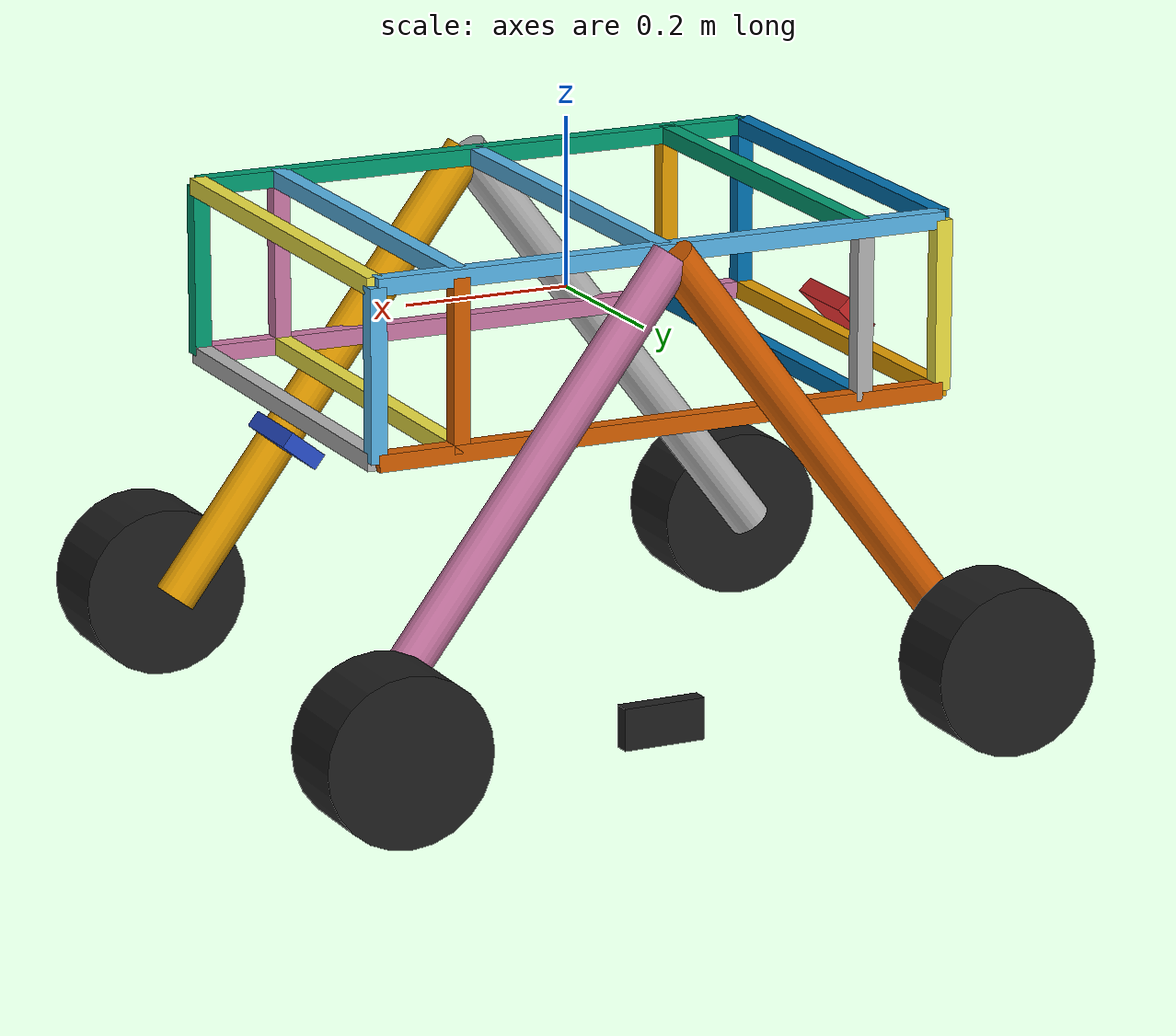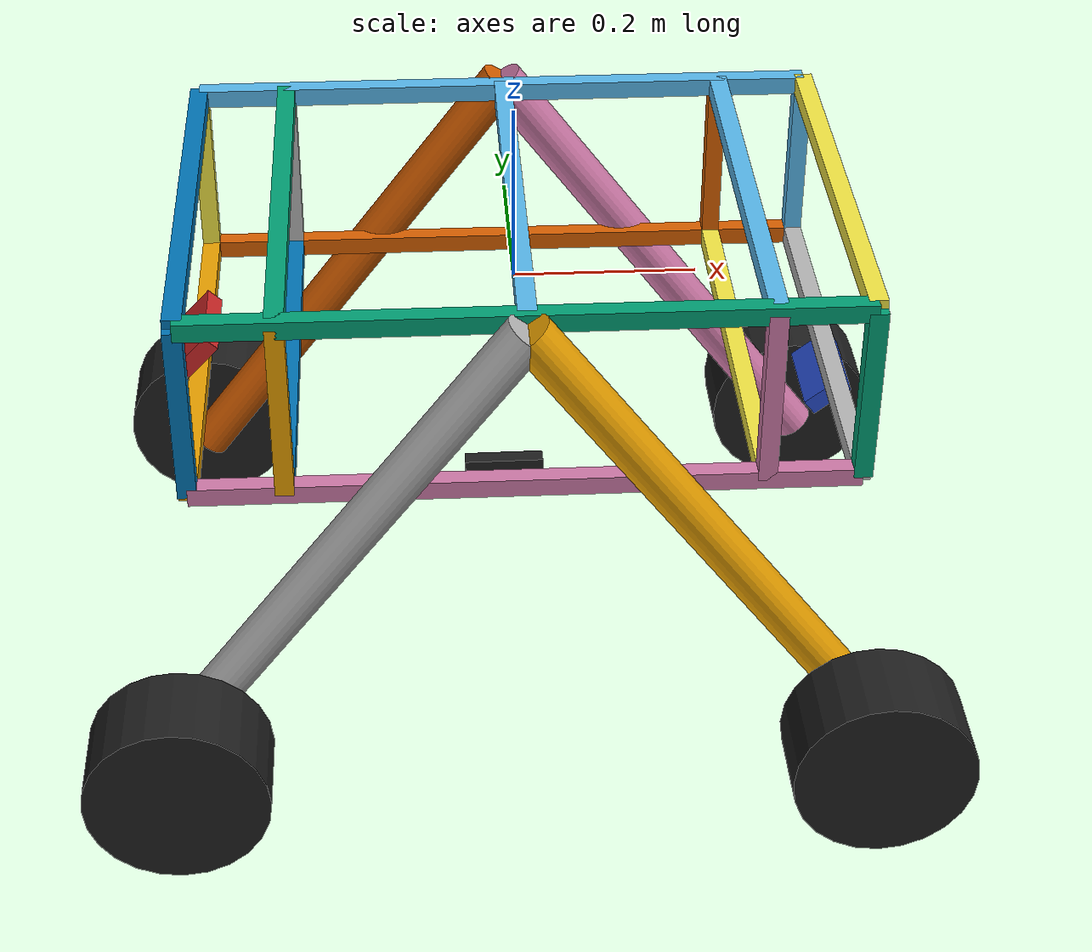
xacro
<?xml version="1.0"?>
<robot name="percy" xmlns:xacro="http://wwww.ros.org/wiki/xacro">
<xacro:include filename="$(find percy_model)/urdf/materials.xacro" />
<xacro:include filename="$(find percy_model)/urdf/percy_model_macros.xacro" />
<xacro:include filename="$(find percy_model)/urdf/percy_model.gazebo.xacro" />
<xacro:property name= "link_width" value= "0.02"/>
<xacro:property name="body_length" value="0.7"/>
<xacro:property name="body_width" value="0.5"/>
<xacro:property name="body_height" value="0.2"/>
<xacro:property name="work_height" value="0.3"/>
<xacro:property name="inner_strut_width" value="0.5"/>
<xacro:property name="leg_radius" value = "0.025"/>
<xacro:property name="theta" value="37"/>
<xacro:property name="leg_length" value="${(work_height+body_height)/(cos(radians(theta)))}"/>
<xacro:macro name="front_left_wheel_origin">
<origin xyz=" ${-1*((leg_length)*sin(radians(theta)))} ${body_width/2 + leg_radius} ${(body_height/2)-(leg_length*cos(radians(theta)))}" rpy="${radians(90)} 0.0 0.0"/>
</xacro:macro>
<xacro:property name="wheel_radius" value="0.1"/>
<xacro:property name="wheel_thickness" value="0.1"/>
<xacro:property name="wheel_mass" value="1"/>
<xacro:property name="camera_link_length" value="0.1"/>
<xacro:property name="camera_link_width" value="0.02"/>
<xacro:property name="camera_link_height" value="0.05"/>
<xacro:property name="wheel_dist" value="${body_width+leg_radius*4}"/>
<xacro:property name="density" value="2710"/>

<link name="origin">
    <origin xyz="0.0 0.0 0.0"/>
</link>

 <link name="link1">
  <pose> 0 0 3 0 0 0 </pose>
    <collision>
          <origin rpy="0.0 0.0 0.0" xyz="0 0 0"/>

        <geometry>
        <box size=" ${body_length} ${link_width} ${link_width}"/>
        </geometry>
    </collision>
    <visual >
             <origin rpy="0.0 0.0 0.0" xyz="0 0 0"/>
        <geometry>
            <box size="${body_length} ${link_width} ${link_width}"/>
        <material name="orange"/>
        </geometry>

    </visual>
    <inertial>
     <origin rpy="0.0 0.0 0.0" xyz="0 0 0"/>
     <xacro:link_inertia length="${body_length}" width="${link_width}" height="${link_width}"/>
    </inertial>
</link>

<joint name="joint1" type="fixed">
    <parent link="origin"/>
    <child link="link1"/>
     <origin rpy="0.0 0.0 0.0" xyz="0 ${body_width/2} ${body_height/2}"/>

</joint>

<link name="link2">

    <collision>
        <origin rpy="0.0 0.0 0" xyz="0 0 0"/>

        <geometry>
        <box size="${body_length} ${link_width} ${link_width}"/>
        </geometry>
        </collision>
    <visual >
        <origin rpy="0.0 0.0 0" xyz="0 0 0"/>

        <geometry>
            <box size=" ${body_length} ${link_width} ${link_width}"/>
        </geometry>
    </visual>

        <inertial>
     <origin rpy="0.0 0.0 0.0" xyz="0 0 0"/>
     <xacro:link_inertia length="${body_length}" width="${link_width}" height="${link_width}"/>
    </inertial>
</link>

<joint name="joint2" type="fixed">
    <parent link="origin"/>
    <child link="link2"/>
     <origin rpy="0.0 0.0 0.0" xyz="0 ${-body_width/2} ${body_height/2}"/>

</joint>

<link name="link3">

     <collision>
        <origin rpy="0.0 0.0 0" xyz="0 0 0"/>

        <geometry>
        <box size="${link_width} ${body_width} ${link_width}"/>
        </geometry>
        </collision>
    <visual >
        <origin rpy="0.0 0.0 0" xyz="0 0 0"/>

        <geometry>
            <box size="${link_width} ${body_width} ${link_width}"/>
        </geometry>

    </visual>

    <inertial>
     <origin rpy="0.0 0.0 0.0" xyz="0 0 0"/>
     <xacro:link_inertia length="${link_width}" width="${body_width}" height="${link_width}"/>
    </inertial>
    </link>
<joint name="joint3" type="fixed">
    <parent link="origin"/>
    <child link="link3"/>
            <origin rpy="0.0 0.0 0" xyz="${body_length/2} 0 ${body_height/2}"/>

</joint>

<link name="link4">
    <collision>

        <geometry>
        <box size="${link_width} ${body_width} ${link_width}"/>
        </geometry>
    </collision>

    <visual >

        <geometry>
            <box size="${link_width} ${body_width} ${link_width}"/>
        </geometry>

    </visual>
        <inertial>
     <origin rpy="0.0 0.0 0.0" xyz="0 0 0"/>
     <xacro:link_inertia length="${link_width}" width="${body_width}" height="${link_width}"/>
    </inertial>

</link>
<joint name="joint4" type="fixed">
        <parent link="origin"/>

    <child link="link4"/>
        <origin rpy="0.0 0.0 0" xyz="${-body_length/2} 0 ${body_height/2}"/>
</joint>

<link name="link5">
  <pose> 0 0 3 0 0 0 </pose>
    <collision>
          <origin rpy="0.0 0.0 0.0" xyz="0 0 0"/>

        <geometry>
        <box size=" ${body_length} ${link_width} ${link_width}"/>
        </geometry>
    </collision>
    <visual >
             <origin rpy="0.0 0.0 0.0" xyz="0 0 0"/>
        <geometry>
            <box size="${body_length} ${link_width} ${link_width}"/>
        <material name="orange"/>
        </geometry>

    </visual>
    <inertial>
     <origin rpy="0.0 0.0 0.0" xyz="0 0 0"/>
     <xacro:link_inertia length="${body_length}" width="${link_width}" height="${link_width}"/>
    </inertial>
</link>
<joint name="joint5" type="fixed">
    <parent link="origin"/>
    <child link="link5"/>
     <origin rpy="0.0 0.0 0.0" xyz="0 ${body_width/2} ${-body_height/2}"/>
</joint>
<link name="link6">

    <collision>
        <origin rpy="0.0 0.0 0" xyz="0 0 0"/>

        <geometry>
        <box size="${body_length} ${link_width} ${link_width}"/>
        </geometry>
        </collision>
    <visual >
        <origin rpy="0.0 0.0 0" xyz="0 0 0"/>

        <geometry>
            <box size=" ${body_length} ${link_width} ${link_width}"/>
        </geometry>
    </visual>

        <inertial>
     <origin rpy="0.0 0.0 0.0" xyz="0 0 0"/>
     <xacro:link_inertia length="${body_length}" width="${link_width}" height="${link_width}"/>
    </inertial>
</link>

<joint name="joint6" type="fixed">
    <parent link="origin"/>
    <child link="link6"/>
     <origin rpy="0.0 0.0 0.0" xyz="0 ${-body_width/2} ${-body_height/2}"/>

</joint>

<link name="link7">

     <collision>
        <origin rpy="0.0 0.0 0" xyz="0 0 0"/>

        <geometry>
        <box size="${link_width} ${body_width} ${link_width}"/>
        </geometry>
        </collision>
    <visual >
        <origin rpy="0.0 0.0 0" xyz="0 0 0"/>

        <geometry>
            <box size="${link_width} ${body_width} ${link_width}"/>
        </geometry>

    </visual>

    <inertial>
     <origin rpy="0.0 0.0 0.0" xyz="0 0 0"/>
     <xacro:link_inertia length="${link_width}" width="${body_width}" height="${link_width}"/>
    </inertial>
    </link>
<joint name="joint7" type="fixed">
    <parent link="origin"/>
    <child link="link7"/>
            <origin rpy="0.0 0.0 0" xyz="${body_length/2} 0 ${-body_height/2}"/>

</joint>

<link name="link8">
    <collision>

        <geometry>
        <box size="${link_width} ${body_width} ${link_width}"/>
        </geometry>
    </collision>

    <visual >

        <geometry>
            <box size="${link_width} ${body_width} ${link_width}"/>
        </geometry>

    </visual>
        <inertial>
     <origin rpy="0.0 0.0 0.0" xyz="0 0 0"/>
     <xacro:link_inertia length="${link_width}" width="${body_width}" height="${link_width}"/>
    </inertial>

</link>
<joint name="joint8" type="fixed">
        <parent link="origin"/>
    <child link="link8"/>
        <origin rpy="0.0 0.0 0" xyz="${-body_length/2} 0 ${-body_height/2}"/>
</joint>

  <link name="link9">

    <collision>

        <geometry>
            <box size="${link_width} ${link_width} ${body_height}"/>
        </geometry>
    </collision>
    <visual>
        <geometry>
            <box size="${link_width} ${link_width} ${body_height}"/>
        </geometry>
    </visual>
        <inertial>
     <origin rpy="0.0 0.0 0.0" xyz="0 0 0"/>
     <xacro:link_inertia length="${link_width}" width="${link_width}" height="${body_height}"/>
    </inertial>
  </link>

<joint name="joint9" type="fixed">
        <parent link="origin"/>
    <child link="link9"/>
        <origin xyz="${body_length/2} ${body_width/2} ${0}"/>
</joint>

<link name="link10">

    <collision>

        <geometry>
        <box size="${link_width} ${link_width} ${body_height}"/>
        </geometry>
    </collision>
    <visual>
        <geometry>
            <box size="${link_width} ${link_width} ${body_height}"/>
        </geometry>
    </visual>
            <inertial>
     <origin rpy="0.0 0.0 0.0" xyz="0 0 0"/>
     <xacro:link_inertia length="${link_width}" width="${link_width}" height="${body_height}"/>
    </inertial>
</link>
<joint name="joint10" type="fixed">
        <parent link="origin"/>
    <child link="link10"/>
        <origin xyz="${body_length/2} ${-body_width/2} ${0}"/>
</joint>

<link name="link11">

    <collision>

     <geometry>
      <box size="${link_width} ${link_width} ${body_height}"/>
     </geometry>
    </collision>
    <visual>
        <geometry>
            <box size="${link_width} ${link_width} ${body_height}"/>
        </geometry>
    </visual>
                <inertial>
     <origin rpy="0.0 0.0 0.0" xyz="0 0 0"/>
     <xacro:link_inertia length="${link_width}" width="${link_width}" height="${body_height}"/>
    </inertial>
</link>
    <joint name="joint11" type="fixed">
        <parent link="origin"/>
    <child link="link11"/>
        <origin xyz="${-body_length/2} ${body_width/2} ${0}"/>
</joint>

<link name="link12">

    <collision>

     <geometry>
      <box size="${link_width} ${link_width} ${body_height}"/>
     </geometry>
    </collision>
    <visual>
        <geometry>
            <box size="${link_width} ${link_width} ${body_height}"/>
        </geometry>
    </visual>
            <inertial>
     <origin rpy="0.0 0.0 0.0" xyz="0 0 0"/>
     <xacro:link_inertia length="${link_width}" width="${link_width}" height="${body_height}"/>
    </inertial>
</link>
    <joint name="joint12" type="fixed">
        <parent link="origin"/>
    <child link="link12"/>
        <origin xyz="${-body_length/2} ${-body_width/2} ${0}"/>
</joint>

 <link name="leg1">
     <collision>

        <geometry>
            <cylinder radius="${leg_radius}" length="${leg_length}"/>
        </geometry>
    </collision>
    <visual>
        <geometry>
            <cylinder radius="${leg_radius}" length="${leg_length}"/>
        </geometry>
    </visual>
                <inertial>
     <origin rpy="0.0 0.0 0.0" xyz="0 0 0"/>
     <xacro:cylinder_inertia l="${leg_length}" r="${leg_radius}" mass="${density*(pi*(leg_radius**2)*leg_length)}"/>
    </inertial>
</link>

    <joint name="joint_leg1" type="fixed">
        <parent link="origin"/>
    <child link="leg1"/>
        <origin xyz="${-1*((leg_length/2)*sin(radians(theta)))} ${body_width/2+leg_radius} ${(body_height/2)-((leg_length/2)*cos(radians(theta)))}" rpy="0.0 ${radians(theta)} 0.0"/>
</joint>

<link name="leg2">
    <collision>

        <geometry>
            <cylinder radius="${leg_radius}" length="${leg_length}"/>
        </geometry>
    </collision>
    <visual>
        <geometry>
            <cylinder radius="${leg_radius}" length="${leg_length}"/>
        </geometry>
    </visual>
                <inertial>
     <origin rpy="0.0 0.0 0.0" xyz="0 0 0"/>
     <xacro:cylinder_inertia l="${leg_length}" r="${leg_radius}" mass="${density*(pi*(leg_radius**2)*leg_length)}"/>
    </inertial>
</link>

    <joint name="joint_leg2" type="fixed">
        <parent link="origin"/>
    <child link="leg2"/>
        <origin xyz="${-1*((leg_length/2)*sin(radians(-theta)))} ${body_width/2+leg_radius} ${(body_height/2)-((leg_length/2)*cos(radians(-theta)))}" rpy="0.0 ${radians(-theta)} 0.0"/>
</joint>
<link name="leg3">
    <collision>

        <geometry>
            <cylinder radius="${leg_radius}" length="${leg_length}"/>
        </geometry>
    </collision>
    <visual>
        <geometry>
            <cylinder radius="${leg_radius}" length="${leg_length}"/>
        </geometry>
    </visual>
                <inertial>
     <origin rpy="0.0 0.0 0.0" xyz="0 0 0"/>
     <xacro:cylinder_inertia l="${leg_length}" r="${leg_radius}" mass="${density*(pi*(leg_radius**2)*leg_length)}"/>
    </inertial>
</link>

    <joint name="joint_leg3" type="fixed">
        <parent link="origin"/>
    <child link="leg3"/>
        <origin xyz="${-1*((leg_length/2)*sin(radians(theta)))} ${-body_width/2-leg_radius} ${(body_height/2)-((leg_length/2)*cos(radians(theta)))}" rpy="0.0 ${radians(theta)} 0.0"/>
</joint>

<link name="leg4">
    <collision>

        <geometry>
            <cylinder radius="${leg_radius}" length="${leg_length}"/>
        </geometry>
    </collision>
    <visual>
        <geometry>
            <cylinder radius="${leg_radius}" length="${leg_length}"/>
        </geometry>
    </visual>
                <inertial>
     <origin rpy="0.0 0.0 0.0" xyz="0 0 0"/>
     <xacro:cylinder_inertia l="${leg_length}" r="${leg_radius}" mass="${density*(pi*(leg_radius**2)*leg_length)}"/>
    </inertial>
</link>

    <joint name="joint_leg4" type="fixed">
        <parent link="origin"/>
    <child link="leg4"/>
        <origin xyz="${-1*((leg_length/2)*sin(radians(-theta)))} ${-body_width/2-leg_radius} ${(body_height/2)-((leg_length/2)*cos(radians(-theta)))}" rpy="0.0 ${radians(-theta)} 0.0"/>
</joint>

     <link name="link13">

    <collision>

        <geometry>
            <box size="${link_width} ${body_width} ${link_width}"/>
        </geometry>
    </collision>
    <visual>
        <geometry>
            <box size="${link_width} ${body_width} ${link_width}"/>
        </geometry>
    </visual>

    <inertial>
     <origin rpy="0.0 0.0 0.0" xyz="0 0 0"/>
     <xacro:link_inertia length="${link_width}" width="${body_width}" height="${link_width}"/>
    </inertial>
</link>

    <joint name="joint13" type="fixed">
        <parent link="origin"/>
    <child link="link13"/>
        <origin xyz="${inner_strut_width/2} 0.0 ${body_height/2}"/>
</joint>

<link name="link14">

    <collision>

        <geometry>
            <box size="${link_width} ${body_width} ${link_width}"/>
        </geometry>
    </collision>
    <visual>
        <geometry>
            <box size="${link_width} ${body_width} ${link_width}"/>
        </geometry>
    </visual>
    <inertial>
     <origin rpy="0.0 0.0 0.0" xyz="0 0 0"/>
     <xacro:link_inertia length="${link_width}" width="${body_width}" height="${link_width}"/>
    </inertial>
</link>

    <joint name="joint14" type="fixed">
        <parent link="origin"/>
    <child link="link14"/>
        <origin xyz="${-inner_strut_width/2} 0.0 ${body_height/2}"/>
</joint>

<link name="link15">
    <collision>
        <geometry>
            <box size="${link_width} ${body_width} ${link_width}"/>
        </geometry>
    </collision>
    <visual>
        <geometry>
            <box size="${link_width} ${body_width} ${link_width}"/>
        </geometry>
    </visual>
        <inertial>
     <origin rpy="0.0 0.0 0.0" xyz="0 0 0"/>
     <xacro:link_inertia length="${link_width}" width="${body_width}" height="${link_width}"/>
    </inertial>
</link>

    <joint name="joint15" type="fixed">
        <parent link="origin"/>
    <child link="link15"/>
        <origin xyz="${inner_strut_width/2} 0.0 ${-body_height/2}"/>
</joint>

<link name="link16">
    <collision>
        <geometry>
            <box size="${link_width} ${body_width} ${link_width}"/>
        </geometry>
    </collision>
    <visual>
        <geometry>
            <box size="${link_width} ${body_width} ${link_width}"/>
        </geometry>
    </visual>

        <inertial>
     <origin rpy="0.0 0.0 0.0" xyz="0 0 0"/>
     <xacro:link_inertia length="${link_width}" width="${body_width}" height="${link_width}"/>
    </inertial>
</link>

    <joint name="joint16" type="fixed">
        <parent link="origin"/>
    <child link="link16"/>
        <origin xyz="${-inner_strut_width/2} 0.0 ${-body_height/2}"/>
</joint>

<link name="link17">
    <collision>
        <geometry>
            <box size="${link_width} ${link_width} ${body_height}"/>
        </geometry>
    </collision>
    <visual>
        <geometry>
            <box size="${link_width} ${link_width} ${body_height}"/>
        </geometry>
    </visual>

        <inertial>
     <origin rpy="0.0 0.0 0.0" xyz="0 0 0"/>
     <xacro:link_inertia length="${link_width}" width="${link_width}" height="${body_height}"/>
    </inertial>
</link>

    <joint name="joint17" type="fixed">
        <parent link="origin"/>
    <child link="link17"/>
        <origin xyz="${inner_strut_width/2} ${body_width/2} 0"/>
</joint>

<link name="link18">
    <collision>

        <geometry>
            <box size="${link_width} ${link_width} ${body_height}"/>
        </geometry>
    </collision>
    <visual>
        <geometry>
            <box size="${link_width} ${link_width} ${body_height}"/>
        </geometry>
    </visual>
        <inertial>
     <origin rpy="0.0 0.0 0.0" xyz="0 0 0"/>
     <xacro:link_inertia length="${link_width}" width="${link_width}" height="${body_height}"/>
    </inertial>
</link>

    <joint name="joint18" type="fixed">
        <parent link="origin"/>
    <child link="link18"/>
        <origin xyz="${inner_strut_width/2} ${-body_width/2} 0"/>
</joint>

<link name="link19">
    <collision>

        <geometry>
            <box size="${link_width} ${link_width} ${body_height}"/>
        </geometry>
    </collision>
    <visual>
        <geometry>
            <box size="${link_width} ${link_width} ${body_height}"/>
        </geometry>
    </visual>

        <inertial>
     <origin rpy="0.0 0.0 0.0" xyz="0 0 0"/>
     <xacro:link_inertia length="${link_width}" width="${link_width}" height="${body_height}"/>
    </inertial>
</link>

    <joint name="joint19" type="fixed">
        <parent link="origin"/>
    <child link="link19"/>
        <origin xyz="${-inner_strut_width/2} ${body_width/2} 0"/>
</joint>

<link name="link20">
    <collision>

        <geometry>
            <box size="${link_width} ${link_width} ${body_height}"/>
        </geometry>
    </collision>
    <visual>
        <geometry>
            <box size="${link_width} ${link_width} ${body_height}"/>
        </geometry>
    </visual>
        <inertial>
     <origin rpy="0.0 0.0 0.0" xyz="0 0 0"/>
     <xacro:link_inertia length="${link_width}" width="${link_width}" height="${body_height}"/>
    </inertial>
</link>

    <joint name="joint20" type="fixed">
        <parent link="origin"/>
    <child link="link20"/>
        <origin xyz="${-inner_strut_width/2} ${-body_width/2} 0"/>
</joint>

<link name ="link21">
    <collision>

        <geometry>
            <box size="${link_width} ${body_width} ${link_width}"/>
        </geometry>
    </collision>
    <visual>
        <geometry>
            <box size="${link_width} ${body_width} ${link_width}"/>
        </geometry>
    </visual>
        <inertial>
     <origin rpy="0.0 0.0 0.0" xyz="0 0 0"/>
     <xacro:link_inertia length="${link_width}" width="${body_width}" height="${link_width}"/>
    </inertial>
</link>

    <joint name="joint21" type="fixed">
        <parent link="origin"/>
    <child link="link21"/>
        <origin xyz="0 0 ${body_height/2}"/>
</joint>

<link name="camera_front_link">
    <collision>
        <geometry>
            <box size="${camera_link_width} ${camera_link_length} ${camera_link_height}"/>
        </geometry>
    </collision>
    <visual>
    <geometry>
            <box size="${camera_link_width} ${camera_link_length} ${camera_link_height}"/>
        </geometry>
    </visual>
</link>

<joint name="camera_front_joint" type="fixed">
    <axis xyz="0.0 1.0 0.0"/>
    <origin xyz="${body_length/2} 0.0 ${-7*body_height/10}" rpy="0.0 0.9 0.0"/>
        <child link="camera_front_link"/>
        <parent link="origin"/>
</joint>

<link name="camera_side_link">
    <collision>
        <geometry>
            <box size="${camera_link_width} ${camera_link_length} ${camera_link_height}"/>
        </geometry>
    </collision>
    <visual>
    <geometry>
            <box size="${camera_link_width} ${camera_link_length} ${camera_link_height}"/>
        </geometry>
    </visual>
</link>

<joint name="camera_side_joint" type="fixed">
    <axis xyz="0.0 1.0 0.0"/>
    <origin xyz="0.0 ${body_width/2} ${-body_height-0.25}" rpy="0 0 -1.56"/>
        <child link="camera_side_link"/>
        <parent link="origin"/>
    </joint>

<link name="camera_rear_link">
    <collision>
        <geometry>
            <box size="${camera_link_width} ${camera_link_length} ${camera_link_height}"/>
        </geometry>
    </collision>
    <visual>
    <geometry>
            <box size="${camera_link_width} ${camera_link_length} ${camera_link_height}"/>
        </geometry>
    </visual>
</link>

<joint name="camera_rear_joint" type="fixed">
    <axis xyz="0.0 1.0 0.0"/>
    <origin xyz="${-1*body_length/2} 0.0 ${-body_height/2 + (camera_link_height/2)+(link_width/2)}" rpy="0.0 0.75 0.0"/>
        <child link="camera_rear_link"/>
        <parent link="origin"/>
</joint>

 <xacro:link_wheel name="link_rear_left_wheel" />
<xacro:joint_wheel name="joint_rear_left_wheel" child="link_rear_left_wheel" origin_xyz="${-1*((leg_length)*sin(radians(theta)))} ${body_width/2 +leg_radius*2 + (wheel_thickness/2)} ${(body_height/2)-(leg_length*cos(radians(theta)))}" />
 <xacro:link_wheel name="link_rear_right_wheel" />
<xacro:joint_wheel name="joint_rear_right_wheel" child="link_rear_right_wheel" origin_xyz="${-1*((leg_length)*sin(radians(theta)))} ${-(body_width/2 + leg_radius*2 + (wheel_thickness/2))} ${(body_height/2)-(leg_length*cos(radians(theta)))}" />
 <xacro:link_wheel name="link_front_left_wheel" />
<xacro:joint_wheel name="joint_front_left_wheel" child="link_front_left_wheel" origin_xyz="${((leg_length)*sin(radians(theta)))} ${body_width/2 +leg_radius*2 + (wheel_thickness/2)} ${(body_height/2)-(leg_length*cos(radians(theta)))}" />
 <xacro:link_wheel name="link_front_right_wheel" />
<xacro:joint_wheel name="joint_front_right_wheel" child="link_front_right_wheel" origin_xyz="${((leg_length)*sin(radians(theta)))} ${-(body_width/2 + leg_radius*2 + (wheel_thickness/2))} ${(body_height/2)-(leg_length*cos(radians(theta)))}" />

</robot>

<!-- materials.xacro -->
<robot xmlns:xacro="http://www.ros.org/wiki/xacro">
  <material name="black">
    <color rgba="0.0 0.0 0.0 1.0"/>
  </material>
  <material name="blue">
    <color rgba="0.203125 0.23828125 0.28515625 1.0"/>
  </material>
  <material name="green">
    <color rgba="0.0 0.8 0.0 1.0"/>
  </material>
  <material name="grey">
    <color rgba="0.2 0.2 0.2 1.0"/>
  </material>
  <material name="orange">
    <color rgba="${255/255} ${108/255} ${10/255} 1.0"/>
  </material>
  <material name="brown">
    <color rgba="0.870588235294 0.811764705882 0.764705882353 1.0"/>
  </material>
  <material name="red">
    <color rgba="0.80078125 0.12890625 0.1328125 1.0"/>
  </material>
  <material name="white">
    <color rgba="1.0 1.0 1.0 1.0"/>
  </material>
</robot>

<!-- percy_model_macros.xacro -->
<robot xmlns:xacro="http://www.ros.org/wiki/xacro">
        <xacro:macro name="link_wheel" params="name">
        <link name="${name}">
            <inertial>
              <mass value="${wheel_mass}"/>
              <origin rpy="0 1.5707 1.5707" xyz="0 0 0"/>
              <xacro:cylinder_inertia mass="${wheel_mass}" r="${wheel_radius}" l="${wheel_thickness}"/>
            </inertial>
            <collision name="link_right_wheel_collision">
              <origin rpy="0 1.5707 1.5707" xyz="0 0 0"/>
              <geometry>
                <cylinder length="${wheel_thickness}" radius="${wheel_radius}"/>
              </geometry>

                <surface>
                  <friction>
              <ode>
                <mu1>1.0</mu1>
                <mu2>0.0</mu2>
               <fdir1>0 1 0</fdir1>
             </ode>
              </friction>
              </surface>
            </collision>
            <visual name="${name}_visual">
              <origin rpy="0 1.5707 1.5707" xyz="0 0 0"/>
              <geometry>
                <cylinder length="${wheel_thickness}" radius="${wheel_radius}"/>
              </geometry>
            </visual>
        </link>
    </xacro:macro>

    <xacro:macro name="joint_wheel" params="name child origin_xyz">
      <joint name="${name}" type="continuous">
        <origin rpy="0 0 0" xyz="${origin_xyz}"/>
        <child link="${child}"/>
        <parent link="origin"/>
        <axis rpy="0 0 0" xyz="0 1 0"/>
<limit effort="10000" velocity="1000"/>
        <joint_properties damping="1.0" friction="1.0"/>
      </joint>
    </xacro:macro>

    <xacro:macro name="cylinder_inertia" params="r l mass">
    <xacro:property name="calc_cylinder_mass" value="${density*(pi*(r**2)*l)}"/>
    <mass value="${mass}"/>
      <inertia  ixx="${mass*(3*r*r+l*l)/12}" ixy = "0" ixz = "0"
                iyy="${mass*(3*r*r+l*l)/12}" iyz = "0"
                izz="${mass*(r*r)/2}" />
    </xacro:macro>

<xacro:macro name="link_inertia" params="length width height">
<xacro:property name="calc_mass" value="${density*(length*width*height)}"/>
<mass value="${calc_mass}"/>

  <inertia ixx="${(calc_mass/12)*(length**2 + height**2)}" ixy="0.0" ixz="0.0" iyy="${(calc_mass/12)*(width**2 + height**2)}" iyz="0.0" izz="${(calc_mass/12)*(width**2 + length**2)}"/>

</xacro:macro>

</robot>
